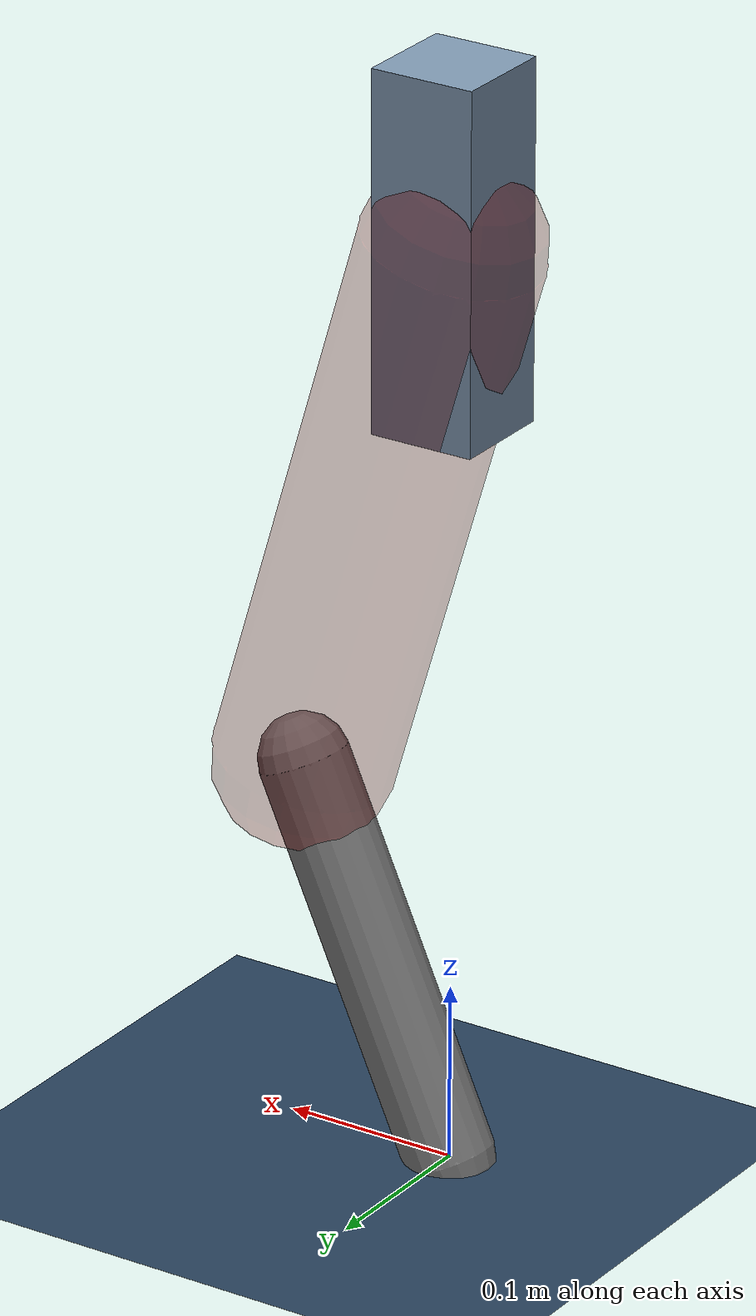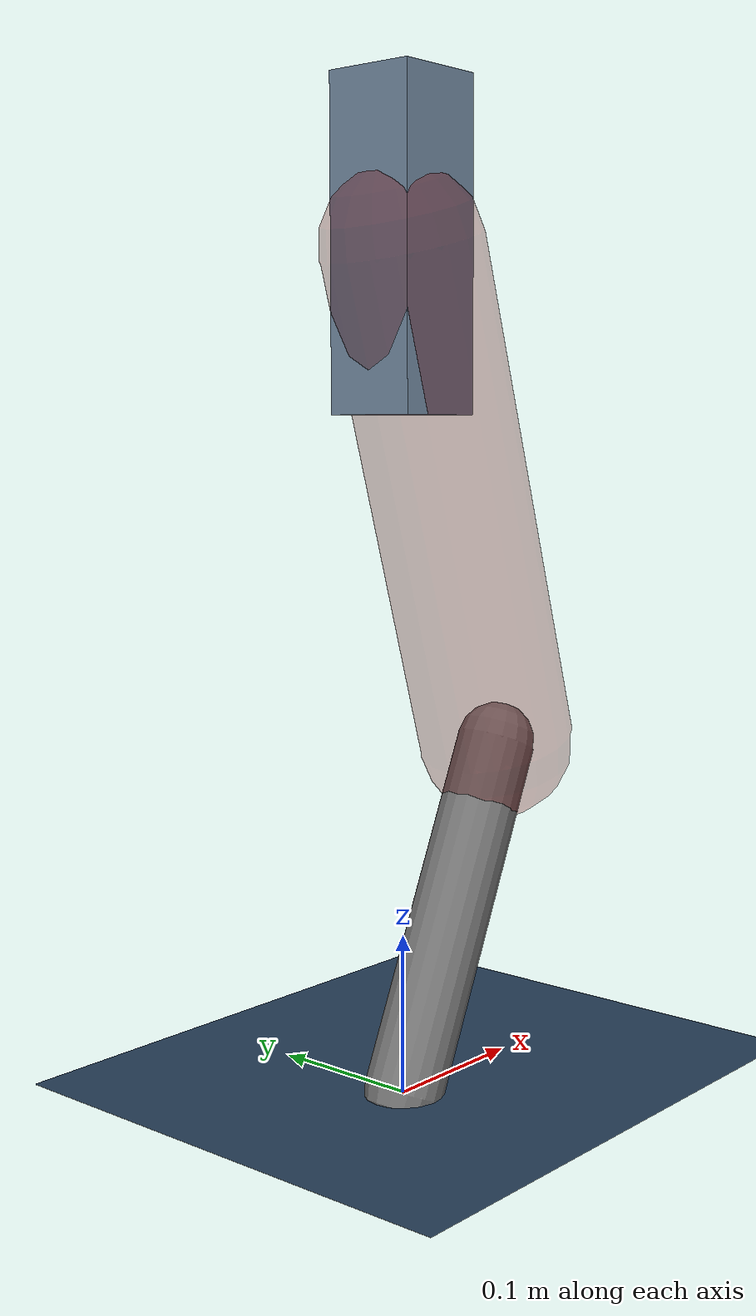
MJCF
<mujoco model="Hopper2D">
	<compiler inertiafromgeom="true" angle="radian" />
	<option timestep="0.001" integrator="implicit" cone="elliptic" solver="Newton" tolerance="1e-10" />

	<default>
		<geom contype="1" conaffinity="1" condim="3" friction="2 0.005 0.0001" solref="0.005 1" />
		<joint limited="true" damping="0.1" />
	</default>

	<asset>
		<texture name="skybox" type="skybox" builtin="gradient" rgb1=".4 .6 .8" rgb2="0 0 0" width="800" height="800" />
		<texture name="grid" type="2d" builtin="checker" rgb1=".1 .2 .3" rgb2=".2 .3 .4" width="300" height="300" mark="edge" markrgb=".2 .3 .4" />
		<material name="ground" texture="grid" texrepeat="1 1" texuniform="true" reflectance="0.1" />
		<material name="leg" rgba="0.5 0.6 0.7 1" />
	</asset>

	<worldbody>

		<geom name="floor" type="plane" size="5 5 0.25" material="ground" />

		<light directional="false" diffuse="0.8 0.8 0.8" specular="0.3 0.3 0.3" pos="0 0 2" dir="0 0 -1" />
		<light mode="targetbodycom" target="base" directional="false" diffuse="0.8 0.8 0.8" specular="0.3 0.3 0.3" pos="0 0 2" dir="0 0 -1" />

		<camera name="fixed" pos="0 -2 1" xyaxes="1 0 0 0 0 1" />
		<camera name="tracking" mode="trackcom" pos="0 -3 1" />

		<body name="root" pos="0 0 0.5203789072502295">
			<joint name="slide_x" type="slide" axis="1 0 0" range="-100 100" />
			<joint name="slide_z" type="slide" axis="0 0 1" range="0 10" />

			<body name="base" pos="0 0 0">
				<geom name="torso" type="box" size="0.03 0.03 0.1" mass="2.912" material="leg" />

				<body name="link1" pos="0 0 0" euler="0 1.2808490342083947 0">
					<joint type="hinge" axis="0 -1 0" pos="0 0 0" name="hinge1" limited="true" range="-3.14 3.14" stiffness="0" damping="0.1" />
					<geom name="thigh" type="capsule" fromto="0 0 0 0.3237189604631853 0 0" size="0.05" rgba="0.5 0 0 0.3" mass="1.053513089296919" />

					<body name="link2" pos="0.3237189604631853 0 0" euler="0 0.7047570321205924 0">
						<joint type="hinge" axis="0 -1 0" pos="0 0 0" name="hinge2" limited="true" range="-3.14 3.14" stiffness="0" damping="0.1" />
						<geom name="shank" type="capsule" fromto="0 0 0 0.22964807854631542 0 0" size="0.025" mass="0.42571846283705234" />

					</body>
				</body>
			</body>
		</body>
	</worldbody>

	<actuator>
		<motor name="torque1" joint="hinge1" ctrlrange="-87.0482934403749 87.0482934403749" ctrllimited="true" gear="1" />
		<motor name="torque2" joint="hinge2" ctrlrange="-97.912204368914 97.912204368914" ctrllimited="true" gear="1" />
	</actuator>
</mujoco>
